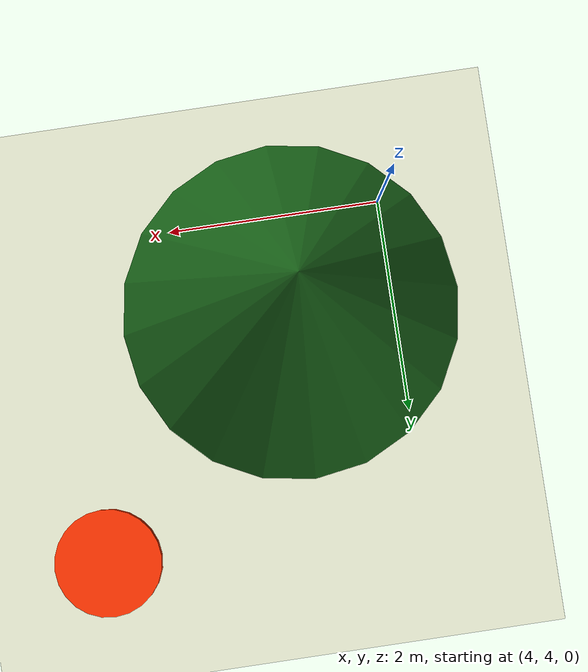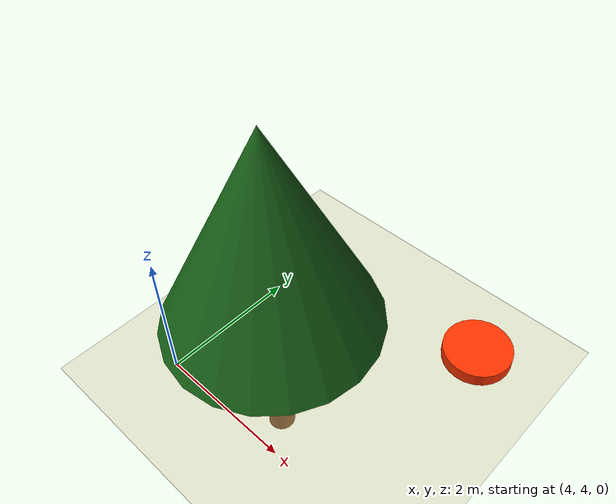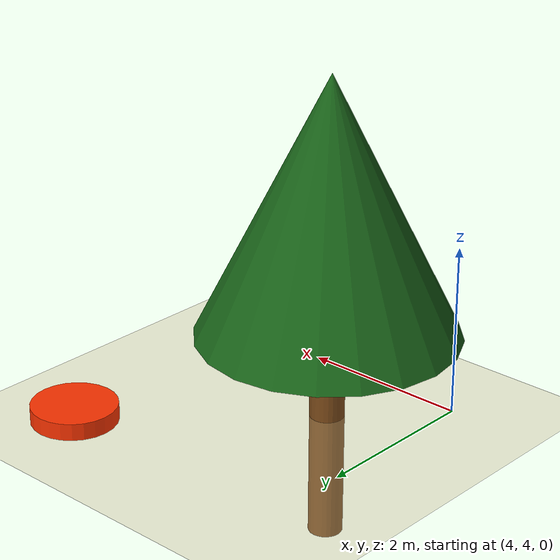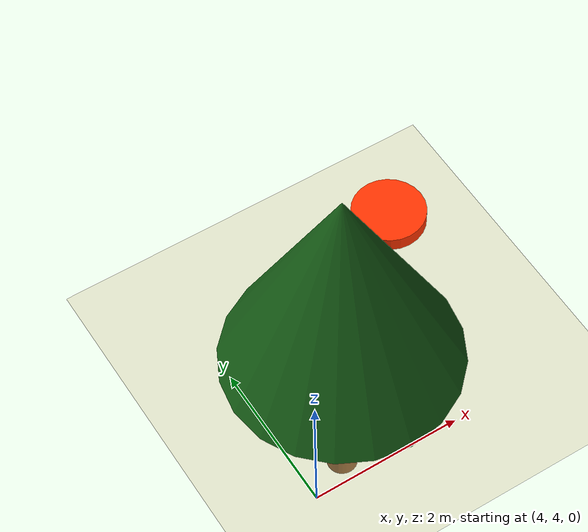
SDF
<?xml version="1.0" ?>
<sdf version="1.8">
  <world name="forest_fire_scenario">
    <!-- Physics settings -->
    <physics type="ode">
      <max_step_size>0.001</max_step_size>
      <real_time_factor>1.0</real_time_factor>
      <real_time_update_rate>1000</real_time_update_rate>
      <ode>
        <solver>
          <type>quick</type>
          <iters>50</iters>
        </solver>
      </ode>
    </physics>

    <!-- Atmosphere settings -->
    <atmosphere type="adiabatic">
      <temperature>298.15</temperature>
      <pressure>101325</pressure>
      <temperature_gradient>-0.0065</temperature_gradient>
    </atmosphere>

    <!-- Ground plane with dry terrain texture -->
    <model name="ground_plane">
      <static>true</static>
      <link name="link">
        <collision name="collision">
          <geometry>
            <plane>
              <normal>0 0 1</normal>
              <size>100 100</size>
            </plane>
          </geometry>
          <surface>
            <friction>
              <ode>
                <mu>100</mu>
                <mu2>50</mu2>
              </ode>
            </friction>
          </surface>
        </collision>
        <visual name="visual">
          <geometry>
            <plane>
              <normal>0 0 1</normal>
              <size>100 100</size>
            </plane>
          </geometry>
          <material>
            <ambient>0.8 0.7 0.5 1</ambient>
            <diffuse>0.8 0.7 0.5 1</diffuse>
            <specular>0.1 0.1 0.1 1</specular>
          </material>
        </visual>
      </link>
    </model>

    <!-- Sun -->
    <light type="directional" name="sun">
      <cast_shadows>true</cast_shadows>
      <pose>0 0 10 0 0 0</pose>
      <diffuse>1 1 1 1</diffuse>
      <specular>0.5 0.5 0.5 1</specular>
      <direction>-0.5 0.1 -0.9</direction>
    </light>

    <!-- Custom tree models -->
    <!-- Tree 1 -->
    <model name="tree1">
      <static>true</static>
      <pose>5 5 0 0 0 0</pose>
      <link name="trunk">
        <collision name="collision">
          <geometry>
            <cylinder>
              <radius>0.2</radius>
              <length>3.0</length>
            </cylinder>
          </geometry>
        </collision>
        <visual name="visual">
          <geometry>
            <cylinder>
              <radius>0.2</radius>
              <length>3.0</length>
            </cylinder>
          </geometry>
          <material>
            <ambient>0.5 0.3 0.1 1</ambient>
            <diffuse>0.5 0.3 0.1 1</diffuse>
          </material>
        </visual>
      </link>
      <link name="foliage">
        <pose>0 0 2.5 0 0 0</pose>
        <collision name="collision">
          <geometry>
            <cone>
              <radius>1.5</radius>
              <length>3.0</length>
            </cone>
          </geometry>
        </collision>
        <visual name="visual">
          <geometry>
            <cone>
              <radius>1.5</radius>
              <length>3.0</length>
            </cone>
          </geometry>
          <material>
            <ambient>0.1 0.4 0.1 1</ambient>
            <diffuse>0.1 0.4 0.1 1</diffuse>
          </material>
        </visual>
      </link>
    </model>

    <!-- Copy tree model with different positions -->
    <model name="tree2">
      <static>true</static>
      <pose>8 5 0 0 0 0.4</pose>
      <!-- Same tree structure as tree1 -->
    </model>

    <model name="tree3">
      <static>true</static>
      <pose>6 8 0 0 0 0.8</pose>
      <!-- Same tree structure as tree1 -->
    </model>

    <!-- Initial fire source -->
    <model name="fire_source">
      <static>true</static>
      <link name="link">
        <visual name="visual">
          <pose>7 7 0.1 0 0 0</pose>
          <geometry>
            <cylinder>
              <radius>0.5</radius>
              <length>0.2</length>
            </cylinder>
          </geometry>
          <material>
            <ambient>1 0.2 0 1</ambient>
            <diffuse>1 0.2 0 1</diffuse>
            <emissive>1 0.2 0 1</emissive>
          </material>
        </visual>
      </link>
    </model>

  </world>
</sdf>
